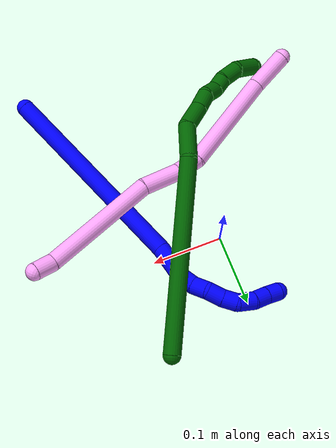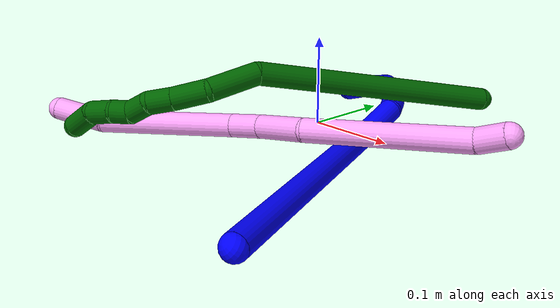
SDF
<sdf version="1.7">
 <world name="default">
  <model name="1">
   <static>0</static>
   <link name="1">
    <collision name="collision-cylinder-e_1_1_4">
     <pose>-0.062034 0.10084 -0.087991 -2.28825 -0.434039 0.903197</pose>
     <geometry><cylinder><radius>0.0125</radius><length>0.29502</length></cylinder></geometry>
     <surface>
      <friction><ode><mu>1.16</mu><mu2>1.16</mu2><slip1>0</slip1><slip2>0</slip2></ode></friction>
      <contact><ode><kp>1e+06</kp><kd>1</kd><max_vel>0</max_vel><min_depth>0.001</min_depth></ode></contact>
     </surface>
    </collision>
    <visual name="visual-cylinder-e_1_1_4">
     <pose>-0.062034 0.10084 -0.087991 -2.28825 -0.434039 0.903197</pose>
     <geometry><cylinder><radius>0.0125</radius><length>0.29502</length></cylinder></geometry>
     <material><ambient>0 0 1 1</ambient></material>
    </visual>
    <collision name="collision-cylinder-e_2_4_5">
     <pose>-0.128251 0.223685 -0.189242 -2.11314 -0.161436 0.284455</pose>
     <geometry><cylinder><radius>0.0125</radius><length>0.052062</length></cylinder></geometry>
     <surface>
      <friction><ode><mu>1.16</mu><mu2>1.16</mu2><slip1>0</slip1><slip2>0</slip2></ode></friction>
      <contact><ode><kp>1e+06</kp><kd>1</kd><max_vel>0</max_vel><min_depth>0.001</min_depth></ode></contact>
     </surface>
    </collision>
    <visual name="visual-cylinder-e_2_4_5">
     <pose>-0.128251 0.223685 -0.189242 -2.11314 -0.161436 0.284455</pose>
     <geometry><cylinder><radius>0.0125</radius><length>0.052062</length></cylinder></geometry>
     <material><ambient>0 0 1 1</ambient></material>
    </visual>
    <collision name="collision-cylinder-e_3_5_6">
     <pose>-0.137871 0.254146 -0.207088 -2.06768 -0.514343 0.832002</pose>
     <geometry><cylinder><radius>0.0125</radius><length>0.022096</length></cylinder></geometry>
     <surface>
      <friction><ode><mu>1.16</mu><mu2>1.16</mu2><slip1>0</slip1><slip2>0</slip2></ode></friction>
      <contact><ode><kp>1e+06</kp><kd>1</kd><max_vel>0</max_vel><min_depth>0.001</min_depth></ode></contact>
     </surface>
    </collision>
    <visual name="visual-cylinder-e_3_5_6">
     <pose>-0.137871 0.254146 -0.207088 -2.06768 -0.514343 0.832002</pose>
     <geometry><cylinder><radius>0.0125</radius><length>0.022096</length></cylinder></geometry>
     <material><ambient>0 0 1 1</ambient></material>
    </visual>
    <collision name="collision-cylinder-e_4_6_7">
     <pose>-0.149668 0.271443 -0.213567 -1.78176 -0.61316 0.746365</pose>
     <geometry><cylinder><radius>0.0125</radius><length>0.022111</length></cylinder></geometry>
     <surface>
      <friction><ode><mu>1.16</mu><mu2>1.16</mu2><slip1>0</slip1><slip2>0</slip2></ode></friction>
      <contact><ode><kp>1e+06</kp><kd>1</kd><max_vel>0</max_vel><min_depth>0.001</min_depth></ode></contact>
     </surface>
    </collision>
    <visual name="visual-cylinder-e_4_6_7">
     <pose>-0.149668 0.271443 -0.213567 -1.78176 -0.61316 0.746365</pose>
     <geometry><cylinder><radius>0.0125</radius><length>0.022111</length></cylinder></geometry>
     <material><ambient>0 0 1 1</ambient></material>
    </visual>
    <collision name="collision-cylinder-e_5_7_8">
     <pose>-0.164446 0.286082 -0.220418 -2.27823 -0.834491 1.53234</pose>
     <geometry><cylinder><radius>0.0125</radius><length>0.022718</length></cylinder></geometry>
     <surface>
      <friction><ode><mu>1.16</mu><mu2>1.16</mu2><slip1>0</slip1><slip2>0</slip2></ode></friction>
      <contact><ode><kp>1e+06</kp><kd>1</kd><max_vel>0</max_vel><min_depth>0.001</min_depth></ode></contact>
     </surface>
    </collision>
    <visual name="visual-cylinder-e_5_7_8">
     <pose>-0.164446 0.286082 -0.220418 -2.27823 -0.834491 1.53234</pose>
     <geometry><cylinder><radius>0.0125</radius><length>0.022718</length></cylinder></geometry>
     <material><ambient>0 0 1 1</ambient></material>
    </visual>
    <collision name="collision-cylinder-e_6_8_9">
     <pose>-0.181272 0.297478 -0.22816 -2.0324 -0.931406 1.36321</pose>
     <geometry><cylinder><radius>0.0125</radius><length>0.020958</length></cylinder></geometry>
     <surface>
      <friction><ode><mu>1.16</mu><mu2>1.16</mu2><slip1>0</slip1><slip2>0</slip2></ode></friction>
      <contact><ode><kp>1e+06</kp><kd>1</kd><max_vel>0</max_vel><min_depth>0.001</min_depth></ode></contact>
     </surface>
    </collision>
    <visual name="visual-cylinder-e_6_8_9">
     <pose>-0.181272 0.297478 -0.22816 -2.0324 -0.931406 1.36321</pose>
     <geometry><cylinder><radius>0.0125</radius><length>0.020958</length></cylinder></geometry>
     <material><ambient>0 0 1 1</ambient></material>
    </visual>
    <collision name="collision-cylinder-e_7_9_10">
     <pose>-0.20172 0.304556 -0.231266 -1.78444 -1.44572 1.66056</pose>
     <geometry><cylinder><radius>0.0125</radius><length>0.024268</length></cylinder></geometry>
     <surface>
      <friction><ode><mu>1.16</mu><mu2>1.16</mu2><slip1>0</slip1><slip2>0</slip2></ode></friction>
      <contact><ode><kp>1e+06</kp><kd>1</kd><max_vel>0</max_vel><min_depth>0.001</min_depth></ode></contact>
     </surface>
    </collision>
    <visual name="visual-cylinder-e_7_9_10">
     <pose>-0.20172 0.304556 -0.231266 -1.78444 -1.44572 1.66056</pose>
     <geometry><cylinder><radius>0.0125</radius><length>0.024268</length></cylinder></geometry>
     <material><ambient>0 0 1 1</ambient></material>
    </visual>
    <collision name="collision-cylinder-e_8_10_11">
     <pose>-0.223908 0.304735 -0.230359 0.81383 -1.39643 -0.694099</pose>
     <geometry><cylinder><radius>0.0125</radius><length>0.020611</length></cylinder></geometry>
     <surface>
      <friction><ode><mu>1.16</mu><mu2>1.16</mu2><slip1>0</slip1><slip2>0</slip2></ode></friction>
      <contact><ode><kp>1e+06</kp><kd>1</kd><max_vel>0</max_vel><min_depth>0.001</min_depth></ode></contact>
     </surface>
    </collision>
    <visual name="visual-cylinder-e_8_10_11">
     <pose>-0.223908 0.304735 -0.230359 0.81383 -1.39643 -0.694099</pose>
     <geometry><cylinder><radius>0.0125</radius><length>0.020611</length></cylinder></geometry>
     <material><ambient>0 0 1 1</ambient></material>
    </visual>
    <collision name="collision-cylinder-e_9_11_2">
     <pose>-0.244073 0.302737 -0.228258 0.674574 -1.45956 -0.607952</pose>
     <geometry><cylinder><radius>0.0125</radius><length>0.020156</length></cylinder></geometry>
     <surface>
      <friction><ode><mu>1.16</mu><mu2>1.16</mu2><slip1>0</slip1><slip2>0</slip2></ode></friction>
      <contact><ode><kp>1e+06</kp><kd>1</kd><max_vel>0</max_vel><min_depth>0.001</min_depth></ode></contact>
     </surface>
    </collision>
    <visual name="visual-cylinder-e_9_11_2">
     <pose>-0.244073 0.302737 -0.228258 0.674574 -1.45956 -0.607952</pose>
     <geometry><cylinder><radius>0.0125</radius><length>0.020156</length></cylinder></geometry>
     <material><ambient>0 0 1 1</ambient></material>
    </visual>
    <collision name="collision-sphere-2">
     <pose>-0.254089 0.302038 -0.227384 0 -0 0</pose>
     <geometry><sphere><radius>0.0125</radius></sphere></geometry>
     <surface>
      <friction><ode><mu>1.16</mu><mu2>1.16</mu2><slip1>0</slip1><slip2>0</slip2></ode></friction>
      <contact><ode><kp>1e+06</kp><kd>1</kd><max_vel>0</max_vel><min_depth>0.001</min_depth></ode></contact>
     </surface>
    </collision>
    <visual name="visual-sphere-2">
     <pose>-0.254089 0.302038 -0.227384 0 -0 0</pose>
     <geometry><sphere><radius>0.0125</radius></sphere></geometry>
     <material><ambient>0 0 1 1</ambient></material>
    </visual>
    <collision name="collision-sphere-11">
     <pose>-0.234058 0.303436 -0.229131 0 -0 0</pose>
     <geometry><sphere><radius>0.0125</radius></sphere></geometry>
     <surface>
      <friction><ode><mu>1.16</mu><mu2>1.16</mu2><slip1>0</slip1><slip2>0</slip2></ode></friction>
      <contact><ode><kp>1e+06</kp><kd>1</kd><max_vel>0</max_vel><min_depth>0.001</min_depth></ode></contact>
     </surface>
    </collision>
    <visual name="visual-sphere-11">
     <pose>-0.234058 0.303436 -0.229131 0 -0 0</pose>
     <geometry><sphere><radius>0.0125</radius></sphere></geometry>
     <material><ambient>0 0 1 1</ambient></material>
    </visual>
    <collision name="collision-sphere-10">
     <pose>-0.213759 0.306035 -0.231587 0 -0 0</pose>
     <geometry><sphere><radius>0.0125</radius></sphere></geometry>
     <surface>
      <friction><ode><mu>1.16</mu><mu2>1.16</mu2><slip1>0</slip1><slip2>0</slip2></ode></friction>
      <contact><ode><kp>1e+06</kp><kd>1</kd><max_vel>0</max_vel><min_depth>0.001</min_depth></ode></contact>
     </surface>
    </collision>
    <visual name="visual-sphere-10">
     <pose>-0.213759 0.306035 -0.231587 0 -0 0</pose>
     <geometry><sphere><radius>0.0125</radius></sphere></geometry>
     <material><ambient>0 0 1 1</ambient></material>
    </visual>
    <collision name="collision-sphere-9">
     <pose>-0.189681 0.303076 -0.230945 0 -0 0</pose>
     <geometry><sphere><radius>0.0125</radius></sphere></geometry>
     <surface>
      <friction><ode><mu>1.16</mu><mu2>1.16</mu2><slip1>0</slip1><slip2>0</slip2></ode></friction>
      <contact><ode><kp>1e+06</kp><kd>1</kd><max_vel>0</max_vel><min_depth>0.001</min_depth></ode></contact>
     </surface>
    </collision>
    <visual name="visual-sphere-9">
     <pose>-0.189681 0.303076 -0.230945 0 -0 0</pose>
     <geometry><sphere><radius>0.0125</radius></sphere></geometry>
     <material><ambient>0 0 1 1</ambient></material>
    </visual>
    <collision name="collision-sphere-4">
     <pose>-0.124067 0.201679 -0.175981 0 -0 0</pose>
     <geometry><sphere><radius>0.0125</radius></sphere></geometry>
     <surface>
      <friction><ode><mu>1.16</mu><mu2>1.16</mu2><slip1>0</slip1><slip2>0</slip2></ode></friction>
      <contact><ode><kp>1e+06</kp><kd>1</kd><max_vel>0</max_vel><min_depth>0.001</min_depth></ode></contact>
     </surface>
    </collision>
    <visual name="visual-sphere-4">
     <pose>-0.124067 0.201679 -0.175981 0 -0 0</pose>
     <geometry><sphere><radius>0.0125</radius></sphere></geometry>
     <material><ambient>0 0 1 1</ambient></material>
    </visual>
    <collision name="collision-sphere-1">
     <geometry><sphere><radius>0.0125</radius></sphere></geometry>
     <surface>
      <friction><ode><mu>1.16</mu><mu2>1.16</mu2><slip1>0</slip1><slip2>0</slip2></ode></friction>
      <contact><ode><kp>1e+06</kp><kd>1</kd><max_vel>0</max_vel><min_depth>0.001</min_depth></ode></contact>
     </surface>
    </collision>
    <visual name="visual-sphere-1">
     <geometry><sphere><radius>0.0125</radius></sphere></geometry>
     <material><ambient>0 0 1 1</ambient></material>
    </visual>
    <collision name="collision-sphere-8">
     <pose>-0.172863 0.291879 -0.225375 0 -0 0</pose>
     <geometry><sphere><radius>0.0125</radius></sphere></geometry>
     <surface>
      <friction><ode><mu>1.16</mu><mu2>1.16</mu2><slip1>0</slip1><slip2>0</slip2></ode></friction>
      <contact><ode><kp>1e+06</kp><kd>1</kd><max_vel>0</max_vel><min_depth>0.001</min_depth></ode></contact>
     </surface>
    </collision>
    <visual name="visual-sphere-8">
     <pose>-0.172863 0.291879 -0.225375 0 -0 0</pose>
     <geometry><sphere><radius>0.0125</radius></sphere></geometry>
     <material><ambient>0 0 1 1</ambient></material>
    </visual>
    <collision name="collision-sphere-5">
     <pose>-0.132435 0.245691 -0.202503 0 -0 0</pose>
     <geometry><sphere><radius>0.0125</radius></sphere></geometry>
     <surface>
      <friction><ode><mu>1.16</mu><mu2>1.16</mu2><slip1>0</slip1><slip2>0</slip2></ode></friction>
      <contact><ode><kp>1e+06</kp><kd>1</kd><max_vel>0</max_vel><min_depth>0.001</min_depth></ode></contact>
     </surface>
    </collision>
    <visual name="visual-sphere-5">
     <pose>-0.132435 0.245691 -0.202503 0 -0 0</pose>
     <geometry><sphere><radius>0.0125</radius></sphere></geometry>
     <material><ambient>0 0 1 1</ambient></material>
    </visual>
    <collision name="collision-sphere-6">
     <pose>-0.143306 0.262601 -0.211673 0 -0 0</pose>
     <geometry><sphere><radius>0.0125</radius></sphere></geometry>
     <surface>
      <friction><ode><mu>1.16</mu><mu2>1.16</mu2><slip1>0</slip1><slip2>0</slip2></ode></friction>
      <contact><ode><kp>1e+06</kp><kd>1</kd><max_vel>0</max_vel><min_depth>0.001</min_depth></ode></contact>
     </surface>
    </collision>
    <visual name="visual-sphere-6">
     <pose>-0.143306 0.262601 -0.211673 0 -0 0</pose>
     <geometry><sphere><radius>0.0125</radius></sphere></geometry>
     <material><ambient>0 0 1 1</ambient></material>
    </visual>
    <collision name="collision-sphere-7">
     <pose>-0.15603 0.280284 -0.21546 0 -0 0</pose>
     <geometry><sphere><radius>0.0125</radius></sphere></geometry>
     <surface>
      <friction><ode><mu>1.16</mu><mu2>1.16</mu2><slip1>0</slip1><slip2>0</slip2></ode></friction>
      <contact><ode><kp>1e+06</kp><kd>1</kd><max_vel>0</max_vel><min_depth>0.001</min_depth></ode></contact>
     </surface>
    </collision>
    <visual name="visual-sphere-7">
     <pose>-0.15603 0.280284 -0.21546 0 -0 0</pose>
     <geometry><sphere><radius>0.0125</radius></sphere></geometry>
     <material><ambient>0 0 1 1</ambient></material>
    </visual>
    <inertial>
     <pose>-0.106597 0.171041 -0.139719 0 -0 0</pose>
     <mass>0.5</mass>
     <inertia>
      <ixx>0.002745</ixx>
      <ixy>0</ixy>
      <ixz>0</ixz>
      <iyy>0.001225</iyy>
      <iyz>0</iyz>
      <izz>-0.000588</izz>
     </inertia>
    </inertial>
   </link>
   <pose>0.192632 -0.286871 0.013241 0.864251 -0.319114 -0.080401</pose>
  </model>
  <model name="4">
   <static>0</static>
   <link name="4">
    <collision name="collision-cylinder-e_1_1_4">
     <pose>-0.010849 -0.009552 -0.004384 2.00102 -0.801266 -1.16726</pose>
     <geometry><cylinder><radius>0.0125</radius><length>0.03021</length></cylinder></geometry>
     <surface>
      <friction><ode><mu>1.16</mu><mu2>1.16</mu2><slip1>0</slip1><slip2>0</slip2></ode></friction>
      <contact><ode><kp>1e+06</kp><kd>1</kd><max_vel>0</max_vel><min_depth>0.001</min_depth></ode></contact>
     </surface>
    </collision>
    <visual name="visual-cylinder-e_1_1_4">
     <pose>-0.010849 -0.009552 -0.004384 2.00102 -0.801266 -1.16726</pose>
     <geometry><cylinder><radius>0.0125</radius><length>0.03021</length></cylinder></geometry>
     <material><ambient>1 0.65098 0.996078 1</ambient></material>
    </visual>
    <collision name="collision-cylinder-e_2_4_5">
     <pose>-0.096564 -0.052348 -0.028186 2.09947 -1.09581 -1.63202</pose>
     <geometry><cylinder><radius>0.0125</radius><length>0.168371</length></cylinder></geometry>
     <surface>
      <friction><ode><mu>1.16</mu><mu2>1.16</mu2><slip1>0</slip1><slip2>0</slip2></ode></friction>
      <contact><ode><kp>1e+06</kp><kd>1</kd><max_vel>0</max_vel><min_depth>0.001</min_depth></ode></contact>
     </surface>
    </collision>
    <visual name="visual-cylinder-e_2_4_5">
     <pose>-0.096564 -0.052348 -0.028186 2.09947 -1.09581 -1.63202</pose>
     <geometry><cylinder><radius>0.0125</radius><length>0.168371</length></cylinder></geometry>
     <material><ambient>1 0.65098 0.996078 1</ambient></material>
    </visual>
    <collision name="collision-cylinder-e_3_5_6">
     <pose>-0.192452 -0.098684 -0.060273 2.33973 -0.856755 -1.64518</pose>
     <geometry><cylinder><radius>0.0125</radius><length>0.055634</length></cylinder></geometry>
     <surface>
      <friction><ode><mu>1.16</mu><mu2>1.16</mu2><slip1>0</slip1><slip2>0</slip2></ode></friction>
      <contact><ode><kp>1e+06</kp><kd>1</kd><max_vel>0</max_vel><min_depth>0.001</min_depth></ode></contact>
     </surface>
    </collision>
    <visual name="visual-cylinder-e_3_5_6">
     <pose>-0.192452 -0.098684 -0.060273 2.33973 -0.856755 -1.64518</pose>
     <geometry><cylinder><radius>0.0125</radius><length>0.055634</length></cylinder></geometry>
     <material><ambient>1 0.65098 0.996078 1</ambient></material>
    </visual>
    <collision name="collision-cylinder-e_4_6_7">
     <pose>-0.228531 -0.119984 -0.07873 2.18513 -0.982482 -1.60235</pose>
     <geometry><cylinder><radius>0.0125</radius><length>0.036199</length></cylinder></geometry>
     <surface>
      <friction><ode><mu>1.16</mu><mu2>1.16</mu2><slip1>0</slip1><slip2>0</slip2></ode></friction>
      <contact><ode><kp>1e+06</kp><kd>1</kd><max_vel>0</max_vel><min_depth>0.001</min_depth></ode></contact>
     </surface>
    </collision>
    <visual name="visual-cylinder-e_4_6_7">
     <pose>-0.228531 -0.119984 -0.07873 2.18513 -0.982482 -1.60235</pose>
     <geometry><cylinder><radius>0.0125</radius><length>0.036199</length></cylinder></geometry>
     <material><ambient>1 0.65098 0.996078 1</ambient></material>
    </visual>
    <collision name="collision-cylinder-e_5_7_8">
     <pose>-0.31492 -0.153736 -0.088991 1.74407 -1.2221 -1.38996</pose>
     <geometry><cylinder><radius>0.0125</radius><length>0.151801</length></cylinder></geometry>
     <surface>
      <friction><ode><mu>1.16</mu><mu2>1.16</mu2><slip1>0</slip1><slip2>0</slip2></ode></friction>
      <contact><ode><kp>1e+06</kp><kd>1</kd><max_vel>0</max_vel><min_depth>0.001</min_depth></ode></contact>
     </surface>
    </collision>
    <visual name="visual-cylinder-e_5_7_8">
     <pose>-0.31492 -0.153736 -0.088991 1.74407 -1.2221 -1.38996</pose>
     <geometry><cylinder><radius>0.0125</radius><length>0.151801</length></cylinder></geometry>
     <material><ambient>1 0.65098 0.996078 1</ambient></material>
    </visual>
    <collision name="collision-cylinder-e_6_8_2">
     <pose>-0.414108 -0.184174 -0.09937 2.44991 -1.3021 -2.25804</pose>
     <geometry><cylinder><radius>0.0125</radius><length>0.057785</length></cylinder></geometry>
     <surface>
      <friction><ode><mu>1.16</mu><mu2>1.16</mu2><slip1>0</slip1><slip2>0</slip2></ode></friction>
      <contact><ode><kp>1e+06</kp><kd>1</kd><max_vel>0</max_vel><min_depth>0.001</min_depth></ode></contact>
     </surface>
    </collision>
    <visual name="visual-cylinder-e_6_8_2">
     <pose>-0.414108 -0.184174 -0.09937 2.44991 -1.3021 -2.25804</pose>
     <geometry><cylinder><radius>0.0125</radius><length>0.057785</length></cylinder></geometry>
     <material><ambient>1 0.65098 0.996078 1</ambient></material>
    </visual>
    <collision name="collision-sphere-2">
     <pose>-0.441964 -0.189066 -0.105277 0 -0 0</pose>
     <geometry><sphere><radius>0.0125</radius></sphere></geometry>
     <surface>
      <friction><ode><mu>1.16</mu><mu2>1.16</mu2><slip1>0</slip1><slip2>0</slip2></ode></friction>
      <contact><ode><kp>1e+06</kp><kd>1</kd><max_vel>0</max_vel><min_depth>0.001</min_depth></ode></contact>
     </surface>
    </collision>
    <visual name="visual-sphere-2">
     <pose>-0.441964 -0.189066 -0.105277 0 -0 0</pose>
     <geometry><sphere><radius>0.0125</radius></sphere></geometry>
     <material><ambient>1 0.65098 0.996078 1</ambient></material>
    </visual>
    <collision name="collision-sphere-4">
     <pose>-0.021698 -0.019105 -0.008767 0 -0 0</pose>
     <geometry><sphere><radius>0.0125</radius></sphere></geometry>
     <surface>
      <friction><ode><mu>1.16</mu><mu2>1.16</mu2><slip1>0</slip1><slip2>0</slip2></ode></friction>
      <contact><ode><kp>1e+06</kp><kd>1</kd><max_vel>0</max_vel><min_depth>0.001</min_depth></ode></contact>
     </surface>
    </collision>
    <visual name="visual-sphere-4">
     <pose>-0.021698 -0.019105 -0.008767 0 -0 0</pose>
     <geometry><sphere><radius>0.0125</radius></sphere></geometry>
     <material><ambient>1 0.65098 0.996078 1</ambient></material>
    </visual>
    <collision name="collision-sphere-1">
     <geometry><sphere><radius>0.0125</radius></sphere></geometry>
     <surface>
      <friction><ode><mu>1.16</mu><mu2>1.16</mu2><slip1>0</slip1><slip2>0</slip2></ode></friction>
      <contact><ode><kp>1e+06</kp><kd>1</kd><max_vel>0</max_vel><min_depth>0.001</min_depth></ode></contact>
     </surface>
    </collision>
    <visual name="visual-sphere-1">
     <geometry><sphere><radius>0.0125</radius></sphere></geometry>
     <material><ambient>1 0.65098 0.996078 1</ambient></material>
    </visual>
    <collision name="collision-sphere-8">
     <pose>-0.386252 -0.179281 -0.093462 0 -0 0</pose>
     <geometry><sphere><radius>0.0125</radius></sphere></geometry>
     <surface>
      <friction><ode><mu>1.16</mu><mu2>1.16</mu2><slip1>0</slip1><slip2>0</slip2></ode></friction>
      <contact><ode><kp>1e+06</kp><kd>1</kd><max_vel>0</max_vel><min_depth>0.001</min_depth></ode></contact>
     </surface>
    </collision>
    <visual name="visual-sphere-8">
     <pose>-0.386252 -0.179281 -0.093462 0 -0 0</pose>
     <geometry><sphere><radius>0.0125</radius></sphere></geometry>
     <material><ambient>1 0.65098 0.996078 1</ambient></material>
    </visual>
    <collision name="collision-sphere-5">
     <pose>-0.17143 -0.085592 -0.047605 0 -0 0</pose>
     <geometry><sphere><radius>0.0125</radius></sphere></geometry>
     <surface>
      <friction><ode><mu>1.16</mu><mu2>1.16</mu2><slip1>0</slip1><slip2>0</slip2></ode></friction>
      <contact><ode><kp>1e+06</kp><kd>1</kd><max_vel>0</max_vel><min_depth>0.001</min_depth></ode></contact>
     </surface>
    </collision>
    <visual name="visual-sphere-5">
     <pose>-0.17143 -0.085592 -0.047605 0 -0 0</pose>
     <geometry><sphere><radius>0.0125</radius></sphere></geometry>
     <material><ambient>1 0.65098 0.996078 1</ambient></material>
    </visual>
    <collision name="collision-sphere-6">
     <pose>-0.213474 -0.111776 -0.07294 0 -0 0</pose>
     <geometry><sphere><radius>0.0125</radius></sphere></geometry>
     <surface>
      <friction><ode><mu>1.16</mu><mu2>1.16</mu2><slip1>0</slip1><slip2>0</slip2></ode></friction>
      <contact><ode><kp>1e+06</kp><kd>1</kd><max_vel>0</max_vel><min_depth>0.001</min_depth></ode></contact>
     </surface>
    </collision>
    <visual name="visual-sphere-6">
     <pose>-0.213474 -0.111776 -0.07294 0 -0 0</pose>
     <geometry><sphere><radius>0.0125</radius></sphere></geometry>
     <material><ambient>1 0.65098 0.996078 1</ambient></material>
    </visual>
    <collision name="collision-sphere-7">
     <pose>-0.243587 -0.128192 -0.08452 0 -0 0</pose>
     <geometry><sphere><radius>0.0125</radius></sphere></geometry>
     <surface>
      <friction><ode><mu>1.16</mu><mu2>1.16</mu2><slip1>0</slip1><slip2>0</slip2></ode></friction>
      <contact><ode><kp>1e+06</kp><kd>1</kd><max_vel>0</max_vel><min_depth>0.001</min_depth></ode></contact>
     </surface>
    </collision>
    <visual name="visual-sphere-7">
     <pose>-0.243587 -0.128192 -0.08452 0 -0 0</pose>
     <geometry><sphere><radius>0.0125</radius></sphere></geometry>
     <material><ambient>1 0.65098 0.996078 1</ambient></material>
    </visual>
    <inertial>
     <pose>-0.214601 -0.105832 -0.060665 0 -0 0</pose>
     <mass>0.5</mass>
     <inertia>
      <ixx>-0.000335</ixx>
      <ixy>0</ixy>
      <ixz>0</ixz>
      <iyy>0.000298</iyy>
      <iyz>0</iyz>
      <izz>0.000943</izz>
     </inertia>
    </inertial>
   </link>
   <pose>0.259996 -0.030674 0.057068 1.77545 0.277731 0.699993</pose>
  </model>
  <model name="6">
   <static>0</static>
   <link name="6">
    <collision name="collision-cylinder-e_1_1_4">
     <pose>-0.003962 0.001513 0.134598 -0.011237 -0.029428 0.000165</pose>
     <geometry><cylinder><radius>0.0125</radius><length>0.269329</length></cylinder></geometry>
     <surface>
      <friction><ode><mu>1.16</mu><mu2>1.16</mu2><slip1>0</slip1><slip2>0</slip2></ode></friction>
      <contact><ode><kp>1e+06</kp><kd>1</kd><max_vel>0</max_vel><min_depth>0.001</min_depth></ode></contact>
     </surface>
    </collision>
    <visual name="visual-cylinder-e_1_1_4">
     <pose>-0.003962 0.001513 0.134598 -0.011237 -0.029428 0.000165</pose>
     <geometry><cylinder><radius>0.0125</radius><length>0.269329</length></cylinder></geometry>
     <material><ambient>0 0.392157 0.003922 1</ambient></material>
    </visual>
    <collision name="collision-cylinder-e_2_4_5">
     <pose>-0.002862 -0.006617 0.294539 0.363559 0.184581 0.034021</pose>
     <geometry><cylinder><radius>0.0125</radius><length>0.05517</length></cylinder></geometry>
     <surface>
      <friction><ode><mu>1.16</mu><mu2>1.16</mu2><slip1>0</slip1><slip2>0</slip2></ode></friction>
      <contact><ode><kp>1e+06</kp><kd>1</kd><max_vel>0</max_vel><min_depth>0.001</min_depth></ode></contact>
     </surface>
    </collision>
    <visual name="visual-cylinder-e_2_4_5">
     <pose>-0.002862 -0.006617 0.294539 0.363559 0.184581 0.034021</pose>
     <geometry><cylinder><radius>0.0125</radius><length>0.05517</length></cylinder></geometry>
     <material><ambient>0 0.392157 0.003922 1</ambient></material>
    </visual>
    <collision name="collision-cylinder-e_3_5_6">
     <pose>-0.003198 -0.025732 0.335765 0.537741 -0.284065 -0.078762</pose>
     <geometry><cylinder><radius>0.0125</radius><length>0.038529</length></cylinder></geometry>
     <surface>
      <friction><ode><mu>1.16</mu><mu2>1.16</mu2><slip1>0</slip1><slip2>0</slip2></ode></friction>
      <contact><ode><kp>1e+06</kp><kd>1</kd><max_vel>0</max_vel><min_depth>0.001</min_depth></ode></contact>
     </surface>
    </collision>
    <visual name="visual-cylinder-e_3_5_6">
     <pose>-0.003198 -0.025732 0.335765 0.537741 -0.284065 -0.078762</pose>
     <geometry><cylinder><radius>0.0125</radius><length>0.038529</length></cylinder></geometry>
     <material><ambient>0 0.392157 0.003922 1</ambient></material>
    </visual>
    <collision name="collision-cylinder-e_4_6_7">
     <pose>-0.012019 -0.040632 0.36308 0.443351 -0.264069 -0.059846</pose>
     <geometry><cylinder><radius>0.0125</radius><length>0.026221</length></cylinder></geometry>
     <surface>
      <friction><ode><mu>1.16</mu><mu2>1.16</mu2><slip1>0</slip1><slip2>0</slip2></ode></friction>
      <contact><ode><kp>1e+06</kp><kd>1</kd><max_vel>0</max_vel><min_depth>0.001</min_depth></ode></contact>
     </surface>
    </collision>
    <visual name="visual-cylinder-e_4_6_7">
     <pose>-0.012019 -0.040632 0.36308 0.443351 -0.264069 -0.059846</pose>
     <geometry><cylinder><radius>0.0125</radius><length>0.026221</length></cylinder></geometry>
     <material><ambient>0 0.392157 0.003922 1</ambient></material>
    </visual>
    <collision name="collision-cylinder-e_5_7_8">
     <pose>-0.020203 -0.055146 0.381633 0.906026 -0.391283 -0.19234</pose>
     <geometry><cylinder><radius>0.0125</radius><length>0.024972</length></cylinder></geometry>
     <surface>
      <friction><ode><mu>1.16</mu><mu2>1.16</mu2><slip1>0</slip1><slip2>0</slip2></ode></friction>
      <contact><ode><kp>1e+06</kp><kd>1</kd><max_vel>0</max_vel><min_depth>0.001</min_depth></ode></contact>
     </surface>
    </collision>
    <visual name="visual-cylinder-e_5_7_8">
     <pose>-0.020203 -0.055146 0.381633 0.906026 -0.391283 -0.19234</pose>
     <geometry><cylinder><radius>0.0125</radius><length>0.024972</length></cylinder></geometry>
     <material><ambient>0 0.392157 0.003922 1</ambient></material>
    </visual>
    <collision name="collision-cylinder-e_6_8_9">
     <pose>-0.029501 -0.067203 0.397291 0.335028 -0.465058 -0.080047</pose>
     <geometry><cylinder><radius>0.0125</radius><length>0.020231</length></cylinder></geometry>
     <surface>
      <friction><ode><mu>1.16</mu><mu2>1.16</mu2><slip1>0</slip1><slip2>0</slip2></ode></friction>
      <contact><ode><kp>1e+06</kp><kd>1</kd><max_vel>0</max_vel><min_depth>0.001</min_depth></ode></contact>
     </surface>
    </collision>
    <visual name="visual-cylinder-e_6_8_9">
     <pose>-0.029501 -0.067203 0.397291 0.335028 -0.465058 -0.080047</pose>
     <geometry><cylinder><radius>0.0125</radius><length>0.020231</length></cylinder></geometry>
     <material><ambient>0 0.392157 0.003922 1</ambient></material>
    </visual>
    <collision name="collision-cylinder-e_7_9_10">
     <pose>-0.04226 -0.076477 0.414992 0.6025 -0.636686 -0.204076</pose>
     <geometry><cylinder><radius>0.0125</radius><length>0.027658</length></cylinder></geometry>
     <surface>
      <friction><ode><mu>1.16</mu><mu2>1.16</mu2><slip1>0</slip1><slip2>0</slip2></ode></friction>
      <contact><ode><kp>1e+06</kp><kd>1</kd><max_vel>0</max_vel><min_depth>0.001</min_depth></ode></contact>
     </surface>
    </collision>
    <visual name="visual-cylinder-e_7_9_10">
     <pose>-0.04226 -0.076477 0.414992 0.6025 -0.636686 -0.204076</pose>
     <geometry><cylinder><radius>0.0125</radius><length>0.027658</length></cylinder></geometry>
     <material><ambient>0 0.392157 0.003922 1</ambient></material>
    </visual>
    <collision name="collision-cylinder-e_8_10_2">
     <pose>-0.059993 -0.097617 0.431101 1.1329 -0.525993 -0.33916</pose>
     <geometry><cylinder><radius>0.0125</radius><length>0.037891</length></cylinder></geometry>
     <surface>
      <friction><ode><mu>1.16</mu><mu2>1.16</mu2><slip1>0</slip1><slip2>0</slip2></ode></friction>
      <contact><ode><kp>1e+06</kp><kd>1</kd><max_vel>0</max_vel><min_depth>0.001</min_depth></ode></contact>
     </surface>
    </collision>
    <visual name="visual-cylinder-e_8_10_2">
     <pose>-0.059993 -0.097617 0.431101 1.1329 -0.525993 -0.33916</pose>
     <geometry><cylinder><radius>0.0125</radius><length>0.037891</length></cylinder></geometry>
     <material><ambient>0 0.392157 0.003922 1</ambient></material>
    </visual>
    <collision name="collision-sphere-2">
     <pose>-0.069505 -0.112456 0.438048 0 -0 0</pose>
     <geometry><sphere><radius>0.0125</radius></sphere></geometry>
     <surface>
      <friction><ode><mu>1.16</mu><mu2>1.16</mu2><slip1>0</slip1><slip2>0</slip2></ode></friction>
      <contact><ode><kp>1e+06</kp><kd>1</kd><max_vel>0</max_vel><min_depth>0.001</min_depth></ode></contact>
     </surface>
    </collision>
    <visual name="visual-sphere-2">
     <pose>-0.069505 -0.112456 0.438048 0 -0 0</pose>
     <geometry><sphere><radius>0.0125</radius></sphere></geometry>
     <material><ambient>0 0.392157 0.003922 1</ambient></material>
    </visual>
    <collision name="collision-sphere-10">
     <pose>-0.050481 -0.082779 0.424153 0 -0 0</pose>
     <geometry><sphere><radius>0.0125</radius></sphere></geometry>
     <surface>
      <friction><ode><mu>1.16</mu><mu2>1.16</mu2><slip1>0</slip1><slip2>0</slip2></ode></friction>
      <contact><ode><kp>1e+06</kp><kd>1</kd><max_vel>0</max_vel><min_depth>0.001</min_depth></ode></contact>
     </surface>
    </collision>
    <visual name="visual-sphere-10">
     <pose>-0.050481 -0.082779 0.424153 0 -0 0</pose>
     <geometry><sphere><radius>0.0125</radius></sphere></geometry>
     <material><ambient>0 0.392157 0.003922 1</ambient></material>
    </visual>
    <collision name="collision-sphere-9">
     <pose>-0.034038 -0.070176 0.40583 0 -0 0</pose>
     <geometry><sphere><radius>0.0125</radius></sphere></geometry>
     <surface>
      <friction><ode><mu>1.16</mu><mu2>1.16</mu2><slip1>0</slip1><slip2>0</slip2></ode></friction>
      <contact><ode><kp>1e+06</kp><kd>1</kd><max_vel>0</max_vel><min_depth>0.001</min_depth></ode></contact>
     </surface>
    </collision>
    <visual name="visual-sphere-9">
     <pose>-0.034038 -0.070176 0.40583 0 -0 0</pose>
     <geometry><sphere><radius>0.0125</radius></sphere></geometry>
     <material><ambient>0 0.392157 0.003922 1</ambient></material>
    </visual>
    <collision name="collision-sphere-4">
     <pose>-0.007925 0.003025 0.269195 0 -0 0</pose>
     <geometry><sphere><radius>0.0125</radius></sphere></geometry>
     <surface>
      <friction><ode><mu>1.16</mu><mu2>1.16</mu2><slip1>0</slip1><slip2>0</slip2></ode></friction>
      <contact><ode><kp>1e+06</kp><kd>1</kd><max_vel>0</max_vel><min_depth>0.001</min_depth></ode></contact>
     </surface>
    </collision>
    <visual name="visual-sphere-4">
     <pose>-0.007925 0.003025 0.269195 0 -0 0</pose>
     <geometry><sphere><radius>0.0125</radius></sphere></geometry>
     <material><ambient>0 0.392157 0.003922 1</ambient></material>
    </visual>
    <collision name="collision-sphere-1">
     <geometry><sphere><radius>0.0125</radius></sphere></geometry>
     <surface>
      <friction><ode><mu>1.16</mu><mu2>1.16</mu2><slip1>0</slip1><slip2>0</slip2></ode></friction>
      <contact><ode><kp>1e+06</kp><kd>1</kd><max_vel>0</max_vel><min_depth>0.001</min_depth></ode></contact>
     </surface>
    </collision>
    <visual name="visual-sphere-1">
     <geometry><sphere><radius>0.0125</radius></sphere></geometry>
     <material><ambient>0 0.392157 0.003922 1</ambient></material>
    </visual>
    <collision name="collision-sphere-8">
     <pose>-0.024965 -0.064231 0.388753 0 -0 0</pose>
     <geometry><sphere><radius>0.0125</radius></sphere></geometry>
     <surface>
      <friction><ode><mu>1.16</mu><mu2>1.16</mu2><slip1>0</slip1><slip2>0</slip2></ode></friction>
      <contact><ode><kp>1e+06</kp><kd>1</kd><max_vel>0</max_vel><min_depth>0.001</min_depth></ode></contact>
     </surface>
    </collision>
    <visual name="visual-sphere-8">
     <pose>-0.024965 -0.064231 0.388753 0 -0 0</pose>
     <geometry><sphere><radius>0.0125</radius></sphere></geometry>
     <material><ambient>0 0.392157 0.003922 1</ambient></material>
    </visual>
    <collision name="collision-sphere-5">
     <pose>0.002201 -0.01626 0.319883 0 -0 0</pose>
     <geometry><sphere><radius>0.0125</radius></sphere></geometry>
     <surface>
      <friction><ode><mu>1.16</mu><mu2>1.16</mu2><slip1>0</slip1><slip2>0</slip2></ode></friction>
      <contact><ode><kp>1e+06</kp><kd>1</kd><max_vel>0</max_vel><min_depth>0.001</min_depth></ode></contact>
     </surface>
    </collision>
    <visual name="visual-sphere-5">
     <pose>0.002201 -0.01626 0.319883 0 -0 0</pose>
     <geometry><sphere><radius>0.0125</radius></sphere></geometry>
     <material><ambient>0 0.392157 0.003922 1</ambient></material>
    </visual>
    <collision name="collision-sphere-6">
     <pose>-0.008597 -0.035203 0.351648 0 -0 0</pose>
     <geometry><sphere><radius>0.0125</radius></sphere></geometry>
     <surface>
      <friction><ode><mu>1.16</mu><mu2>1.16</mu2><slip1>0</slip1><slip2>0</slip2></ode></friction>
      <contact><ode><kp>1e+06</kp><kd>1</kd><max_vel>0</max_vel><min_depth>0.001</min_depth></ode></contact>
     </surface>
    </collision>
    <visual name="visual-sphere-6">
     <pose>-0.008597 -0.035203 0.351648 0 -0 0</pose>
     <geometry><sphere><radius>0.0125</radius></sphere></geometry>
     <material><ambient>0 0.392157 0.003922 1</ambient></material>
    </visual>
    <collision name="collision-sphere-7">
     <pose>-0.015441 -0.046061 0.374512 0 -0 0</pose>
     <geometry><sphere><radius>0.0125</radius></sphere></geometry>
     <surface>
      <friction><ode><mu>1.16</mu><mu2>1.16</mu2><slip1>0</slip1><slip2>0</slip2></ode></friction>
      <contact><ode><kp>1e+06</kp><kd>1</kd><max_vel>0</max_vel><min_depth>0.001</min_depth></ode></contact>
     </surface>
    </collision>
    <visual name="visual-sphere-7">
     <pose>-0.015441 -0.046061 0.374512 0 -0 0</pose>
     <geometry><sphere><radius>0.0125</radius></sphere></geometry>
     <material><ambient>0 0.392157 0.003922 1</ambient></material>
    </visual>
    <inertial>
     <pose>-0.012414 -0.021131 0.240676 0 -0 0</pose>
     <mass>0.5</mass>
     <inertia>
      <ixx>0.001665</ixx>
      <ixy>0</ixy>
      <ixz>0</ixz>
      <iyy>0.001659</iyy>
      <iyz>0</iyz>
      <izz>8.8e-05</izz>
     </inertia>
    </inertial>
   </link>
   <pose>0.126782 0.135871 0.028866 1.39921 0.254312 -0.474954</pose>
  </model>
 </world>
</sdf>
